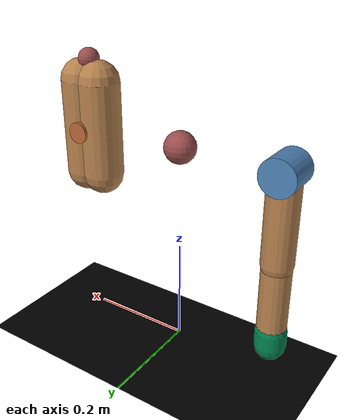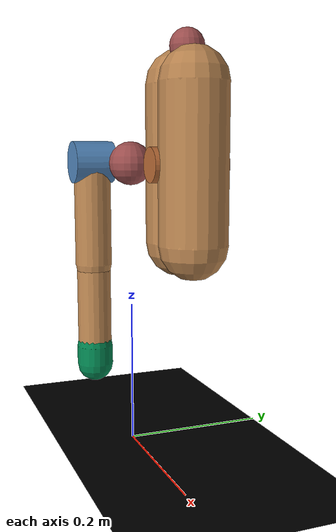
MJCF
<mujoco model="finger">
  <include file="./visual.xml"/>
  <include file="./skybox.xml"/>
  <include file="./materials.xml"/>

  <option timestep="0.01" cone="elliptic" iterations="200">
    <flag gravity="disable"/>
  </option>

  <default>
    <geom solimp="0 0.9 0.01" solref=".02 1"/>
    <joint type="hinge" axis="0 -1 0"/>
    <motor ctrllimited="true" ctrlrange="-1 1"/>
    <default class="finger">
      <joint damping="2.5" limited="true"/>
      <site type="ellipsoid" size=".025 .03 .025" material="site" group="3"/>
    </default>
  </default>

  <worldbody>
    <light name="light" directional="true" diffuse=".6 .6 .6" pos="0 0 2" specular=".3 .3 .3"/>
    <geom name="ground" type="plane" pos="0 0 0" size=".6 .2 10" material="grid"/>
    <camera name="cam0" pos="0 -1 .8" xyaxes="1 0 0 0 1 2"/>
    <camera name="cam1" pos="0 -1 .4" xyaxes="1 0 0 0 0 1" />

    <body name="proximal" pos="-.2 0 .4" childclass="finger">
      <geom name="proximal_decoration" type="cylinder" fromto="0 -.033 0 0 .033 0" size=".034" material="decoration"/>
      <joint name="proximal" range="-110 110" ref="-90"/>
      <geom name="proximal" type="capsule" material="self" size=".03" fromto="0 0 0 0 0 -.17"/>
      <body name="distal" pos="0 0 -.18" childclass="finger">
        <joint name="distal" range="-110 110"/>
        <geom name="distal" type="capsule" size=".028" material="self" fromto="0 0 0 0 0 -.16" contype="0" conaffinity="0"/>
        <geom name="fingertip" type="capsule" size=".03" material="effector_highlight" fromto="0 0 -.13 0 0 -.161"/>
        <site name="touchtop" pos=".01 0 -.17"/>
        <site name="touchbottom" pos="-.01 0 -.17"/>
      </body>
    </body>

    <body name="spinner" pos=".2 0 .4">
      <joint name="hinge" frictionloss=".1" damping=".5"/>
      <geom name="cap1" type="capsule" size=".04 .09" material="self" pos=".02 0 0"/>
      <geom name="cap2" type="capsule" size=".04 .09" material="self" pos="-.02 0 0"/>
      <site name="tip" type="sphere"  size=".02" pos="0 0 .13" material="target"/>
      <geom name="spinner_decoration" type="cylinder" fromto="0 -.045 0 0 .045 0" size=".02" material="effector"/>
    </body>

    <site name="target" type="sphere" size=".03" pos="0 0 .4" material="target"/>
  </worldbody>

  <actuator>
    <motor name="proximal" joint="proximal" gear="30"/>
    <motor name="distal" joint="distal" gear="15"/>
  </actuator>

  <!-- All finger observations are functions of sensors. This is useful for finite-differencing. -->
  <sensor>
    <jointpos name="proximal" joint="proximal"/>
    <jointpos name="distal" joint="distal"/>
    <jointvel name="proximal_velocity" joint="proximal"/>
    <jointvel name="distal_velocity" joint="distal"/>
    <jointvel name="hinge_velocity" joint="hinge"/>
    <framepos name="tip" objtype="site" objname="tip"/>
    <framepos name="target" objtype="site" objname="target"/>
    <framepos name="spinner" objtype="xbody" objname="spinner"/>
    <touch name="touchtop" site="touchtop"/>
    <touch name="touchbottom" site="touchbottom"/>
    <framepos name="touchtop_pos" objtype="site" objname="touchtop"/>
    <framepos name="touchbottom_pos" objtype="site" objname="touchbottom"/>
  </sensor>

</mujoco>

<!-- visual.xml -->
<mujoco>
  <visual>
    <headlight ambient=".0 .0 .0" diffuse=".8 .8 .8" specular="0.1 0.1 0.1" active="1"/>
    <map znear=".01"/>
    <quality shadowsize="0"/>
  </visual>
</mujoco>

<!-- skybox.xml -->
<mujoco>
  <asset>
      <texture name="skybox" type="skybox" builtin="flat" rgb1="1 1 1" rgb2="1 1 1"
               width="800" height="800" mark="random" markrgb="1 1 1"/>
  </asset>
</mujoco>

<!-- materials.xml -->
<!--
Common textures, colors and materials to be used throughout this suite. Some
materials such as xxx_highlight are activated on occurence of certain events,
for example receiving a positive reward.
-->
<mujoco>
  <asset>
    <texture name="grid" type="2d" builtin="flat" rgb1="0 0 0" rgb2="0 0 0" width="100" height="100" mark="edge" markrgb="0 0 0"/>
    <material name="grid" texture="grid" texrepeat="1 1" texuniform="true" reflectance=".0"/>
    <material name="self" rgba=".7 .5 .3 1"/>
    <material name="self_default" rgba=".7 .5 .3 1"/>
    <material name="self_highlight" rgba="0 .5 .3 1"/>
    <material name="effector" rgba=".7 .4 .2 1"/>
    <material name="effector_default" rgba=".7 .4 .2 1"/>
    <material name="effector_highlight" rgba="0 .5 .3 1"/>
    <material name="decoration" rgba=".3 .5 .7 1"/>
    <material name="eye" rgba="0 .2 1 1"/>
    <material name="target" rgba=".6 .3 .3 1"/>
    <material name="target_default" rgba=".6 .3 .3 1"/>
    <material name="target_highlight" rgba=".6 .3 .3 .4"/>
    <material name="site" rgba=".5 .5 .5 .3"/>
  </asset>
</mujoco>
